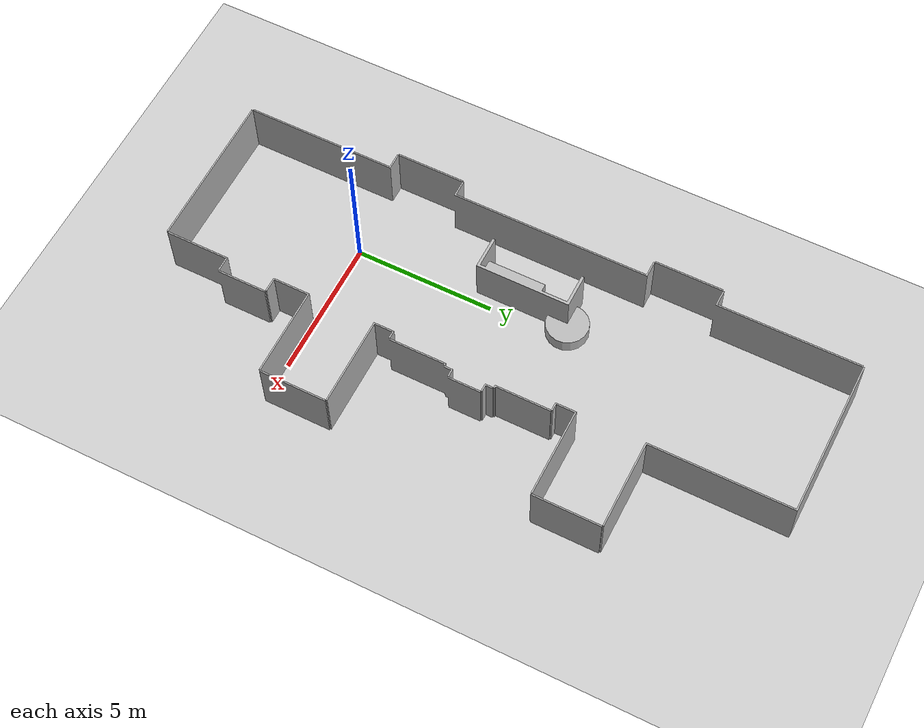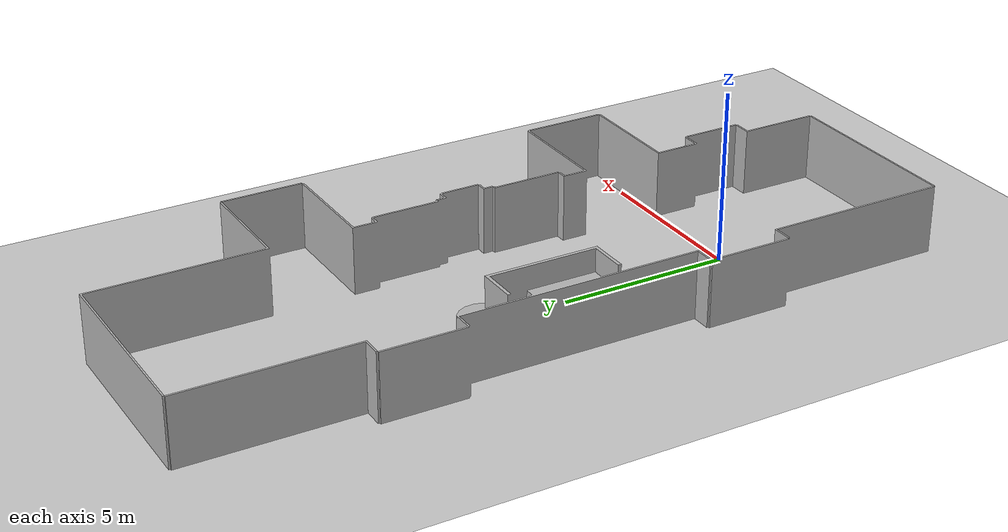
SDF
<?xml version="1.0"?>
<sdf version="1.4">
  <world name="default">
    <physics name='default_physics' default='0' type='ode'>
      <max_step_size>0.001</max_step_size>
      <real_time_factor>1</real_time_factor>
      <real_time_update_rate>1000</real_time_update_rate>
    </physics>

    <gui fullscreen='0'>
      <camera name='user_camera'>
        <pose frame=''>1 1 10 0 1.57 1.57</pose>
        <view_controller>orbit</view_controller>
        <projection_type>perspective</projection_type>
      </camera>
    </gui>

    <include>
      <uri>model://ground_plane</uri>
    </include>
    <include>
      <uri>model://sun</uri>
    </include>

    <model name="my_mesh">
      <pose>-3.0 0 0  0 0 3.14</pose>
      <static>true</static>
      <link name="body">

        <visual name="visual">
          <geometry>
            <mesh><uri>model://reflesh_space_no_wall.dae</uri></mesh>
          </geometry>
        </visual>

        <collision name="collision">
          <geometry>
            <mesh><uri>model://reflesh_space_no_wall.dae</uri></mesh>
          </geometry>
        </collision>

      </link>
    </model>

  </world>
</sdf>
